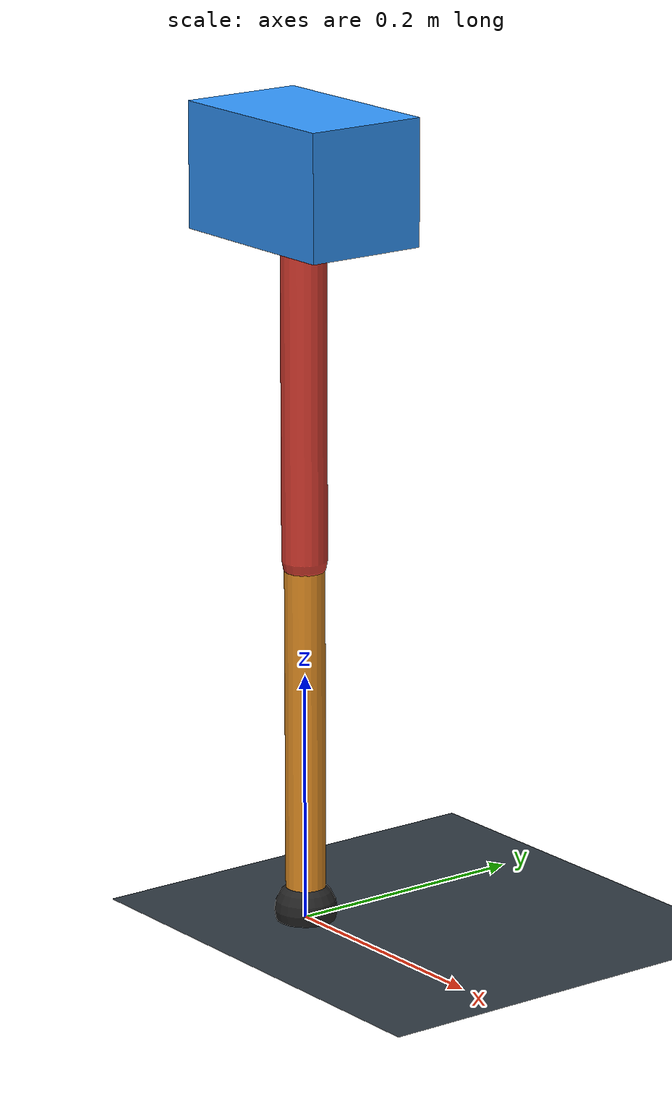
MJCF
<mujoco model="single_axis_two_bar">
  <compiler angle="radian" inertiafromgeom="true"/>
  <option timestep="0.001" integrator="implicitfast" gravity="0 0 -9.81"/>
  <default>
    <joint damping="0.08"/>
    <geom friction="1.2 0.01 0.0001" condim="3"/>
  </default>
  <worldbody>
    <geom name="floor" type="plane" size="5 5 0.1" rgba="0.18 0.22 0.25 1"/>
    <body name="carriage" pos="0 0 0.6011710884081797">
      <joint name="pole_slide" type="slide" axis="0 0 1"/>
      <geom name="payload" type="box" size="0.08 0.05 0.05" mass="2.8155020492625864" rgba="0.2 0.6 1 1"/>
      <body name="thigh" pos="0 0 0">
        <joint name="hip" type="hinge" axis="0 1 0"/>
        <geom name="thigh_link" type="capsule" fromto="0 0 0 0 0 -0.30717186377846023" size="0.018" mass="0.21886401186022106" rgba="0.9 0.25 0.2 1"/>
        <body name="shank" pos="0 0 -0.30717186377846023">
          <joint name="knee" type="hinge" axis="0 1 0"/>
          <geom name="shank_link" type="capsule" fromto="0 0 0 0 0 -0.2868189490134776" size="0.016" mass="0.2043622911501304" rgba="0.95 0.6 0.15 1"/>
          <geom name="foot" type="sphere" pos="0 0 -0.2868189490134776" size="0.025" mass="0.03" rgba="0.15 0.15 0.15 1"/>
          <site name="toe" pos="0 0 -0.2868189490134776" size="0.008"/>
        </body>
      </body>
    </body>
  </worldbody>
  <actuator>
    <motor name="hip_motor" joint="hip" ctrlrange="-34.495083473492 34.495083473492"/>
    <motor name="knee_motor" joint="knee" ctrlrange="-101.14090823876778 101.14090823876778"/>
  </actuator>
</mujoco>
